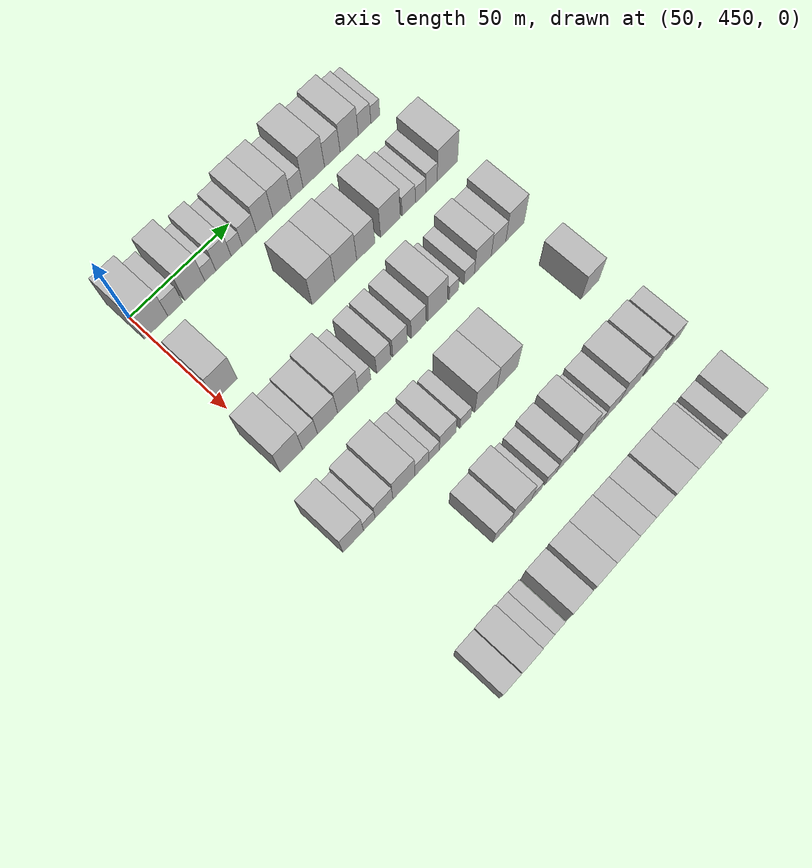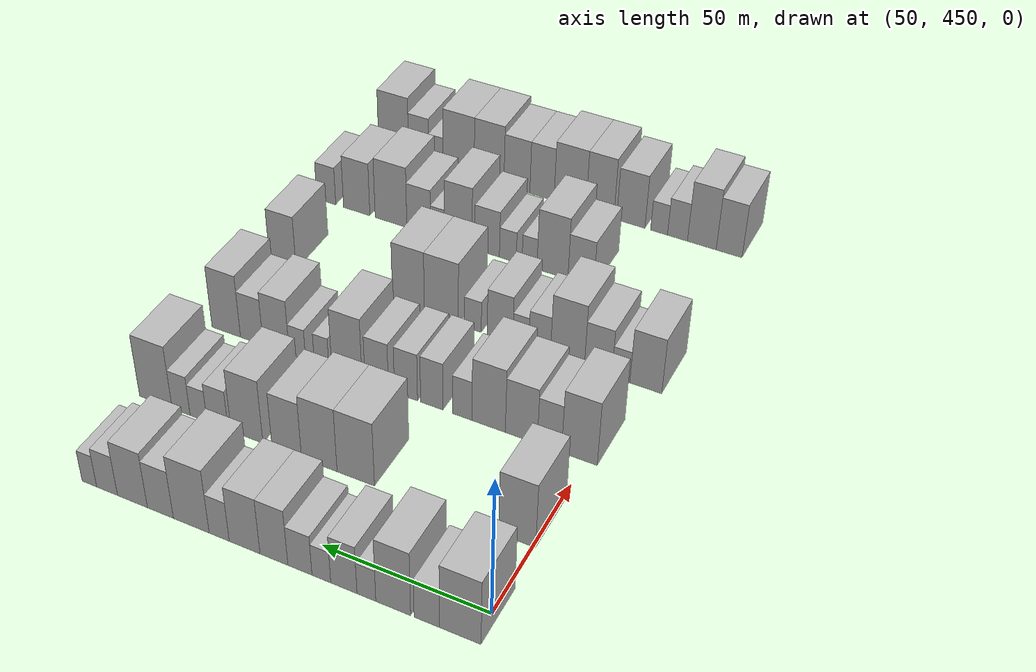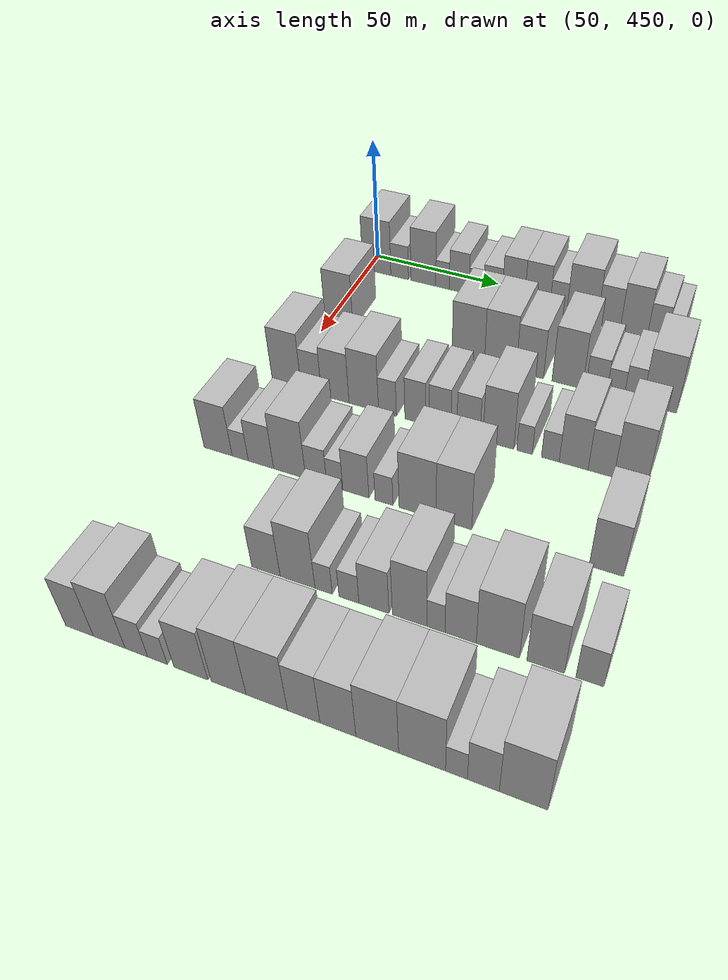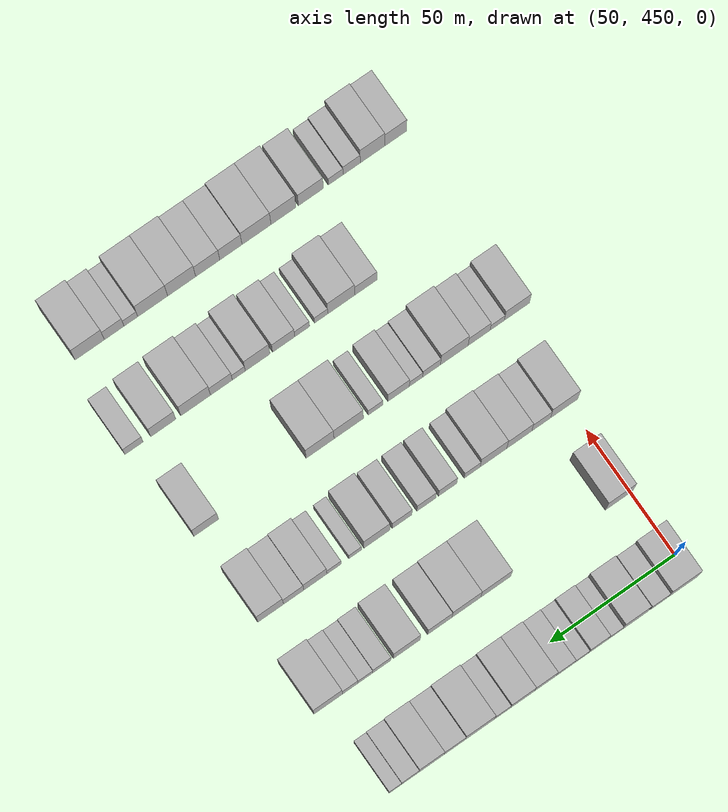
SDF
<sdf version="1.6">
 <world name="default">
  <model name="building_116">
   <static>1</static>
   <pose>50.0000 453.9854 0 0.000000 0.000000 0.000000</pose>
   <link name="link">
    <pose>0 0 12.00 0 0 0</pose>
    <collision name="collision"><geometry><box><size>20.0000 11.7475 24.0000</size></box></geometry></collision>
    <visual name="visual">
     <cast_shadows>0</cast_shadows>
     <geometry><box><size>20.0000 11.7475 24.0000</size></box></geometry>
     <material>
      <script>
       <uri>model://HANNAS_wall/materials/scripts</uri>
       <uri>model://HANNAS_wall/materials/textures</uri>
       <name>vrc/HANNAS_wall</name>
      </script>
     </material>
    </visual>
   </link>
  </model>
  <model name="building_117">
   <static>1</static>
   <pose>50.0000 463.5008 0 0.000000 0.000000 0.000000</pose>
   <link name="link">
    <pose>0 0 7.50 0 0 0</pose>
    <collision name="collision"><geometry><box><size>20.0000 7.2831 15.0000</size></box></geometry></collision>
    <visual name="visual">
     <cast_shadows>0</cast_shadows>
     <geometry><box><size>20.0000 7.2831 15.0000</size></box></geometry>
     <material>
      <script>
       <uri>model://HANNAS_wall/materials/scripts</uri>
       <uri>model://HANNAS_wall/materials/textures</uri>
       <name>vrc/HANNAS_wall</name>
      </script>
     </material>
    </visual>
   </link>
  </model>
  <model name="building_118">
   <static>1</static>
   <pose>50.0000 473.2054 0 0.000000 0.000000 0.000000</pose>
   <link name="link">
    <pose>0 0 12.00 0 0 0</pose>
    <collision name="collision"><geometry><box><size>20.0000 10.1261 24.0000</size></box></geometry></collision>
    <visual name="visual">
     <cast_shadows>0</cast_shadows>
     <geometry><box><size>20.0000 10.1261 24.0000</size></box></geometry>
     <material>
      <script>
       <uri>model://HANNAS_wall/materials/scripts</uri>
       <uri>model://HANNAS_wall/materials/textures</uri>
       <name>vrc/HANNAS_wall</name>
      </script>
     </material>
    </visual>
   </link>
  </model>
  <model name="building_119">
   <static>1</static>
   <pose>50.0000 481.0421 0 0.000000 0.000000 0.000000</pose>
   <link name="link">
    <pose>0 0 6.00 0 0 0</pose>
    <collision name="collision"><geometry><box><size>20.0000 5.5474 12.0000</size></box></geometry></collision>
    <visual name="visual">
     <cast_shadows>0</cast_shadows>
     <geometry><box><size>20.0000 5.5474 12.0000</size></box></geometry>
     <material>
      <script>
       <uri>model://HANNAS_wall/materials/scripts</uri>
       <uri>model://HANNAS_wall/materials/textures</uri>
       <name>vrc/HANNAS_wall</name>
      </script>
     </material>
    </visual>
   </link>
  </model>
  <model name="building_120">
   <static>1</static>
   <pose>50.0000 487.7304 0 0.000000 0.000000 0.000000</pose>
   <link name="link">
    <pose>0 0 9.00 0 0 0</pose>
    <collision name="collision"><geometry><box><size>20.0000 7.8290 18.0000</size></box></geometry></collision>
    <visual name="visual">
     <cast_shadows>0</cast_shadows>
     <geometry><box><size>20.0000 7.8290 18.0000</size></box></geometry>
     <material>
      <script>
       <uri>model://HANNAS_wall/materials/scripts</uri>
       <uri>model://HANNAS_wall/materials/textures</uri>
       <name>vrc/HANNAS_wall</name>
      </script>
     </material>
    </visual>
   </link>
  </model>
  <model name="building_121">
   <static>1</static>
   <pose>50.0000 494.4669 0 0.000000 0.000000 0.000000</pose>
   <link name="link">
    <pose>0 0 6.00 0 0 0</pose>
    <collision name="collision"><geometry><box><size>20.0000 5.6440 12.0000</size></box></geometry></collision>
    <visual name="visual">
     <cast_shadows>0</cast_shadows>
     <geometry><box><size>20.0000 5.6440 12.0000</size></box></geometry>
     <material>
      <script>
       <uri>model://HANNAS_wall/materials/scripts</uri>
       <uri>model://HANNAS_wall/materials/textures</uri>
       <name>vrc/HANNAS_wall</name>
      </script>
     </material>
    </visual>
   </link>
  </model>
  <model name="building_122">
   <static>1</static>
   <pose>50.0000 500.9648 0 0.000000 0.000000 0.000000</pose>
   <link name="link">
    <pose>0 0 7.50 0 0 0</pose>
    <collision name="collision"><geometry><box><size>20.0000 7.3519 15.0000</size></box></geometry></collision>
    <visual name="visual">
     <cast_shadows>0</cast_shadows>
     <geometry><box><size>20.0000 7.3519 15.0000</size></box></geometry>
     <material>
      <script>
       <uri>model://HANNAS_wall/materials/scripts</uri>
       <uri>model://HANNAS_wall/materials/textures</uri>
       <name>vrc/HANNAS_wall</name>
      </script>
     </material>
    </visual>
   </link>
  </model>
  <model name="building_123">
   <static>1</static>
   <pose>50.0000 508.9335 0 0.000000 0.000000 0.000000</pose>
   <link name="link">
    <pose>0 0 10.50 0 0 0</pose>
    <collision name="collision"><geometry><box><size>20.0000 8.5855 21.0000</size></box></geometry></collision>
    <visual name="visual">
     <cast_shadows>0</cast_shadows>
     <geometry><box><size>20.0000 8.5855 21.0000</size></box></geometry>
     <material>
      <script>
       <uri>model://HANNAS_wall/materials/scripts</uri>
       <uri>model://HANNAS_wall/materials/textures</uri>
       <name>vrc/HANNAS_wall</name>
      </script>
     </material>
    </visual>
   </link>
  </model>
  <model name="building_124">
   <static>1</static>
   <pose>50.0000 518.0370 0 0.000000 0.000000 0.000000</pose>
   <link name="link">
    <pose>0 0 10.50 0 0 0</pose>
    <collision name="collision"><geometry><box><size>20.0000 9.6216 21.0000</size></box></geometry></collision>
    <visual name="visual">
     <cast_shadows>0</cast_shadows>
     <geometry><box><size>20.0000 9.6216 21.0000</size></box></geometry>
     <material>
      <script>
       <uri>model://HANNAS_wall/materials/scripts</uri>
       <uri>model://HANNAS_wall/materials/textures</uri>
       <name>vrc/HANNAS_wall</name>
      </script>
     </material>
    </visual>
   </link>
  </model>
  <model name="building_125">
   <static>1</static>
   <pose>50.0000 526.0159 0 0.000000 0.000000 0.000000</pose>
   <link name="link">
    <pose>0 0 7.50 0 0 0</pose>
    <collision name="collision"><geometry><box><size>20.0000 6.3361 15.0000</size></box></geometry></collision>
    <visual name="visual">
     <cast_shadows>0</cast_shadows>
     <geometry><box><size>20.0000 6.3361 15.0000</size></box></geometry>
     <material>
      <script>
       <uri>model://HANNAS_wall/materials/scripts</uri>
       <uri>model://HANNAS_wall/materials/textures</uri>
       <name>vrc/HANNAS_wall</name>
      </script>
     </material>
    </visual>
   </link>
  </model>
  <model name="building_126">
   <static>1</static>
   <pose>50.0000 534.9378 0 0.000000 0.000000 0.000000</pose>
   <link name="link">
    <pose>0 0 12.00 0 0 0</pose>
    <collision name="collision"><geometry><box><size>20.0000 11.5076 24.0000</size></box></geometry></collision>
    <visual name="visual">
     <cast_shadows>0</cast_shadows>
     <geometry><box><size>20.0000 11.5076 24.0000</size></box></geometry>
     <material>
      <script>
       <uri>model://HANNAS_wall/materials/scripts</uri>
       <uri>model://HANNAS_wall/materials/textures</uri>
       <name>vrc/HANNAS_wall</name>
      </script>
     </material>
    </visual>
   </link>
  </model>
  <model name="building_127">
   <static>1</static>
   <pose>50.0000 544.9117 0 0.000000 0.000000 0.000000</pose>
   <link name="link">
    <pose>0 0 9.00 0 0 0</pose>
    <collision name="collision"><geometry><box><size>20.0000 8.4402 18.0000</size></box></geometry></collision>
    <visual name="visual">
     <cast_shadows>0</cast_shadows>
     <geometry><box><size>20.0000 8.4402 18.0000</size></box></geometry>
     <material>
      <script>
       <uri>model://HANNAS_wall/materials/scripts</uri>
       <uri>model://HANNAS_wall/materials/textures</uri>
       <name>vrc/HANNAS_wall</name>
      </script>
     </material>
    </visual>
   </link>
  </model>
  <model name="building_128">
   <static>1</static>
   <pose>50.0000 554.0801 0 0.000000 0.000000 0.000000</pose>
   <link name="link">
    <pose>0 0 10.50 0 0 0</pose>
    <collision name="collision"><geometry><box><size>20.0000 9.8966 21.0000</size></box></geometry></collision>
    <visual name="visual">
     <cast_shadows>0</cast_shadows>
     <geometry><box><size>20.0000 9.8966 21.0000</size></box></geometry>
     <material>
      <script>
       <uri>model://HANNAS_wall/materials/scripts</uri>
       <uri>model://HANNAS_wall/materials/textures</uri>
       <name>vrc/HANNAS_wall</name>
      </script>
     </material>
    </visual>
   </link>
  </model>
  <model name="building_129">
   <static>1</static>
   <pose>50.0000 562.5044 0 0.000000 0.000000 0.000000</pose>
   <link name="link">
    <pose>0 0 7.50 0 0 0</pose>
    <collision name="collision"><geometry><box><size>20.0000 6.9521 15.0000</size></box></geometry></collision>
    <visual name="visual">
     <cast_shadows>0</cast_shadows>
     <geometry><box><size>20.0000 6.9521 15.0000</size></box></geometry>
     <material>
      <script>
       <uri>model://HANNAS_wall/materials/scripts</uri>
       <uri>model://HANNAS_wall/materials/textures</uri>
       <name>vrc/HANNAS_wall</name>
      </script>
     </material>
    </visual>
   </link>
  </model>
  <model name="building_130">
   <static>1</static>
   <pose>50.0000 568.4292 0 0.000000 0.000000 0.000000</pose>
   <link name="link">
    <pose>0 0 6.00 0 0 0</pose>
    <collision name="collision"><geometry><box><size>20.0000 4.8976 12.0000</size></box></geometry></collision>
    <visual name="visual">
     <cast_shadows>0</cast_shadows>
     <geometry><box><size>20.0000 4.8976 12.0000</size></box></geometry>
     <material>
      <script>
       <uri>model://HANNAS_wall/materials/scripts</uri>
       <uri>model://HANNAS_wall/materials/textures</uri>
       <name>vrc/HANNAS_wall</name>
      </script>
     </material>
    </visual>
   </link>
  </model>
  <model name="building_239">
   <static>1</static>
   <pose>85.0000 454.6854 0 0.000000 0.000000 0.000000</pose>
   <link name="link">
    <pose>0 0 12.00 0 0 0</pose>
    <collision name="collision"><geometry><box><size>20.0000 10.9742 24.0000</size></box></geometry></collision>
    <visual name="visual">
     <cast_shadows>0</cast_shadows>
     <geometry><box><size>20.0000 10.9742 24.0000</size></box></geometry>
     <material>
      <script>
       <uri>model://HANNAS_wall/materials/scripts</uri>
       <uri>model://HANNAS_wall/materials/textures</uri>
       <name>vrc/HANNAS_wall</name>
      </script>
     </material>
    </visual>
   </link>
  </model>
  <model name="building_240">
   <static>1</static>
   <pose>85.0000 503.9974 0 0.000000 0.000000 0.000000</pose>
   <link name="link">
    <pose>0 0 12.00 0 0 0</pose>
    <collision name="collision"><geometry><box><size>20.0000 11.8833 24.0000</size></box></geometry></collision>
    <visual name="visual">
     <cast_shadows>0</cast_shadows>
     <geometry><box><size>20.0000 11.8833 24.0000</size></box></geometry>
     <material>
      <script>
       <uri>model://HANNAS_wall/materials/scripts</uri>
       <uri>model://HANNAS_wall/materials/textures</uri>
       <name>vrc/HANNAS_wall</name>
      </script>
     </material>
    </visual>
   </link>
  </model>
  <model name="building_241">
   <static>1</static>
   <pose>85.0000 515.6759 0 0.000000 0.000000 0.000000</pose>
   <link name="link">
    <pose>0 0 12.00 0 0 0</pose>
    <collision name="collision"><geometry><box><size>20.0000 11.4737 24.0000</size></box></geometry></collision>
    <visual name="visual">
     <cast_shadows>0</cast_shadows>
     <geometry><box><size>20.0000 11.4737 24.0000</size></box></geometry>
     <material>
      <script>
       <uri>model://HANNAS_wall/materials/scripts</uri>
       <uri>model://HANNAS_wall/materials/textures</uri>
       <name>vrc/HANNAS_wall</name>
      </script>
     </material>
    </visual>
   </link>
  </model>
  <model name="building_242">
   <static>1</static>
   <pose>85.0000 526.2453 0 0.000000 0.000000 0.000000</pose>
   <link name="link">
    <pose>0 0 10.50 0 0 0</pose>
    <collision name="collision"><geometry><box><size>20.0000 9.6649 21.0000</size></box></geometry></collision>
    <visual name="visual">
     <cast_shadows>0</cast_shadows>
     <geometry><box><size>20.0000 9.6649 21.0000</size></box></geometry>
     <material>
      <script>
       <uri>model://HANNAS_wall/materials/scripts</uri>
       <uri>model://HANNAS_wall/materials/textures</uri>
       <name>vrc/HANNAS_wall</name>
      </script>
     </material>
    </visual>
   </link>
  </model>
  <model name="building_243">
   <static>1</static>
   <pose>85.0000 539.3878 0 0.000000 0.000000 0.000000</pose>
   <link name="link">
    <pose>0 0 12.00 0 0 0</pose>
    <collision name="collision"><geometry><box><size>20.0000 10.6202 24.0000</size></box></geometry></collision>
    <visual name="visual">
     <cast_shadows>0</cast_shadows>
     <geometry><box><size>20.0000 10.6202 24.0000</size></box></geometry>
     <material>
      <script>
       <uri>model://HANNAS_wall/materials/scripts</uri>
       <uri>model://HANNAS_wall/materials/textures</uri>
       <name>vrc/HANNAS_wall</name>
      </script>
     </material>
    </visual>
   </link>
  </model>
  <model name="building_244">
   <static>1</static>
   <pose>85.0000 549.2724 0 0.000000 0.000000 0.000000</pose>
   <link name="link">
    <pose>0 0 7.50 0 0 0</pose>
    <collision name="collision"><geometry><box><size>20.0000 7.1488 15.0000</size></box></geometry></collision>
    <visual name="visual">
     <cast_shadows>0</cast_shadows>
     <geometry><box><size>20.0000 7.1488 15.0000</size></box></geometry>
     <material>
      <script>
       <uri>model://HANNAS_wall/materials/scripts</uri>
       <uri>model://HANNAS_wall/materials/textures</uri>
       <name>vrc/HANNAS_wall</name>
      </script>
     </material>
    </visual>
   </link>
  </model>
  <model name="building_245">
   <static>1</static>
   <pose>85.0000 555.7522 0 0.000000 0.000000 0.000000</pose>
   <link name="link">
    <pose>0 0 6.00 0 0 0</pose>
    <collision name="collision"><geometry><box><size>20.0000 5.8108 12.0000</size></box></geometry></collision>
    <visual name="visual">
     <cast_shadows>0</cast_shadows>
     <geometry><box><size>20.0000 5.8108 12.0000</size></box></geometry>
     <material>
      <script>
       <uri>model://HANNAS_wall/materials/scripts</uri>
       <uri>model://HANNAS_wall/materials/textures</uri>
       <name>vrc/HANNAS_wall</name>
      </script>
     </material>
    </visual>
   </link>
  </model>
  <model name="building_246">
   <static>1</static>
   <pose>85.0000 561.7723 0 0.000000 0.000000 0.000000</pose>
   <link name="link">
    <pose>0 0 7.50 0 0 0</pose>
    <collision name="collision"><geometry><box><size>20.0000 6.2294 15.0000</size></box></geometry></collision>
    <visual name="visual">
     <cast_shadows>0</cast_shadows>
     <geometry><box><size>20.0000 6.2294 15.0000</size></box></geometry>
     <material>
      <script>
       <uri>model://HANNAS_wall/materials/scripts</uri>
       <uri>model://HANNAS_wall/materials/textures</uri>
       <name>vrc/HANNAS_wall</name>
      </script>
     </material>
    </visual>
   </link>
  </model>
  <model name="building_247">
   <static>1</static>
   <pose>85.0000 570.5486 0 0.000000 0.000000 0.000000</pose>
   <link name="link">
    <pose>0 0 12.00 0 0 0</pose>
    <collision name="collision"><geometry><box><size>20.0000 11.3231 24.0000</size></box></geometry></collision>
    <visual name="visual">
     <cast_shadows>0</cast_shadows>
     <geometry><box><size>20.0000 11.3231 24.0000</size></box></geometry>
     <material>
      <script>
       <uri>model://HANNAS_wall/materials/scripts</uri>
       <uri>model://HANNAS_wall/materials/textures</uri>
       <name>vrc/HANNAS_wall</name>
      </script>
     </material>
    </visual>
   </link>
  </model>
  <model name="building_348">
   <static>1</static>
   <pose>120.0000 451.9521 0 0.000000 0.000000 0.000000</pose>
   <link name="link">
    <pose>0 0 12.00 0 0 0</pose>
    <collision name="collision"><geometry><box><size>20.0000 10.9035 24.0000</size></box></geometry></collision>
    <visual name="visual">
     <cast_shadows>0</cast_shadows>
     <geometry><box><size>20.0000 10.9035 24.0000</size></box></geometry>
     <material>
      <script>
       <uri>model://HANNAS_wall/materials/scripts</uri>
       <uri>model://HANNAS_wall/materials/textures</uri>
       <name>vrc/HANNAS_wall</name>
      </script>
     </material>
    </visual>
   </link>
  </model>
  <model name="building_349">
   <static>1</static>
   <pose>120.0000 461.1477 0 0.000000 0.000000 0.000000</pose>
   <link name="link">
    <pose>0 0 9.00 0 0 0</pose>
    <collision name="collision"><geometry><box><size>20.0000 7.4877 18.0000</size></box></geometry></collision>
    <visual name="visual">
     <cast_shadows>0</cast_shadows>
     <geometry><box><size>20.0000 7.4877 18.0000</size></box></geometry>
     <material>
      <script>
       <uri>model://HANNAS_wall/materials/scripts</uri>
       <uri>model://HANNAS_wall/materials/textures</uri>
       <name>vrc/HANNAS_wall</name>
      </script>
     </material>
    </visual>
   </link>
  </model>
  <model name="building_350">
   <static>1</static>
   <pose>120.0000 469.9141 0 0.000000 0.000000 0.000000</pose>
   <link name="link">
    <pose>0 0 10.50 0 0 0</pose>
    <collision name="collision"><geometry><box><size>20.0000 10.0451 21.0000</size></box></geometry></collision>
    <visual name="visual">
     <cast_shadows>0</cast_shadows>
     <geometry><box><size>20.0000 10.0451 21.0000</size></box></geometry>
     <material>
      <script>
       <uri>model://HANNAS_wall/materials/scripts</uri>
       <uri>model://HANNAS_wall/materials/textures</uri>
       <name>vrc/HANNAS_wall</name>
      </script>
     </material>
    </visual>
   </link>
  </model>
  <model name="building_351">
   <static>1</static>
   <pose>120.0000 480.2510 0 0.000000 0.000000 0.000000</pose>
   <link name="link">
    <pose>0 0 12.00 0 0 0</pose>
    <collision name="collision"><geometry><box><size>20.0000 10.6288 24.0000</size></box></geometry></collision>
    <visual name="visual">
     <cast_shadows>0</cast_shadows>
     <geometry><box><size>20.0000 10.6288 24.0000</size></box></geometry>
     <material>
      <script>
       <uri>model://HANNAS_wall/materials/scripts</uri>
       <uri>model://HANNAS_wall/materials/textures</uri>
       <name>vrc/HANNAS_wall</name>
      </script>
     </material>
    </visual>
   </link>
  </model>
  <model name="building_352">
   <static>1</static>
   <pose>120.0000 488.7197 0 0.000000 0.000000 0.000000</pose>
   <link name="link">
    <pose>0 0 7.50 0 0 0</pose>
    <collision name="collision"><geometry><box><size>20.0000 6.3085 15.0000</size></box></geometry></collision>
    <visual name="visual">
     <cast_shadows>0</cast_shadows>
     <geometry><box><size>20.0000 6.3085 15.0000</size></box></geometry>
     <material>
      <script>
       <uri>model://HANNAS_wall/materials/scripts</uri>
       <uri>model://HANNAS_wall/materials/textures</uri>
       <name>vrc/HANNAS_wall</name>
      </script>
     </material>
    </visual>
   </link>
  </model>
  <model name="building_353">
   <static>1</static>
   <pose>120.0000 498.5288 0 0.000000 0.000000 0.000000</pose>
   <link name="link">
    <pose>0 0 9.00 0 0 0</pose>
    <collision name="collision"><geometry><box><size>20.0000 7.3097 18.0000</size></box></geometry></collision>
    <visual name="visual">
     <cast_shadows>0</cast_shadows>
     <geometry><box><size>20.0000 7.3097 18.0000</size></box></geometry>
     <material>
      <script>
       <uri>model://HANNAS_wall/materials/scripts</uri>
       <uri>model://HANNAS_wall/materials/textures</uri>
       <name>vrc/HANNAS_wall</name>
      </script>
     </material>
    </visual>
   </link>
  </model>
  <model name="building_354">
   <static>1</static>
   <pose>120.0000 506.9851 0 0.000000 0.000000 0.000000</pose>
   <link name="link">
    <pose>0 0 9.00 0 0 0</pose>
    <collision name="collision"><geometry><box><size>20.0000 7.6027 18.0000</size></box></geometry></collision>
    <visual name="visual">
     <cast_shadows>0</cast_shadows>
     <geometry><box><size>20.0000 7.6027 18.0000</size></box></geometry>
     <material>
      <script>
       <uri>model://HANNAS_wall/materials/scripts</uri>
       <uri>model://HANNAS_wall/materials/textures</uri>
       <name>vrc/HANNAS_wall</name>
      </script>
     </material>
    </visual>
   </link>
  </model>
  <model name="building_355">
   <static>1</static>
   <pose>120.0000 516.7044 0 0.000000 0.000000 0.000000</pose>
   <link name="link">
    <pose>0 0 9.00 0 0 0</pose>
    <collision name="collision"><geometry><box><size>20.0000 7.8359 18.0000</size></box></geometry></collision>
    <visual name="visual">
     <cast_shadows>0</cast_shadows>
     <geometry><box><size>20.0000 7.8359 18.0000</size></box></geometry>
     <material>
      <script>
       <uri>model://HANNAS_wall/materials/scripts</uri>
       <uri>model://HANNAS_wall/materials/textures</uri>
       <name>vrc/HANNAS_wall</name>
      </script>
     </material>
    </visual>
   </link>
  </model>
  <model name="building_356">
   <static>1</static>
   <pose>120.0000 526.7466 0 0.000000 0.000000 0.000000</pose>
   <link name="link">
    <pose>0 0 12.00 0 0 0</pose>
    <collision name="collision"><geometry><box><size>20.0000 10.2485 24.0000</size></box></geometry></collision>
    <visual name="visual">
     <cast_shadows>0</cast_shadows>
     <geometry><box><size>20.0000 10.2485 24.0000</size></box></geometry>
     <material>
      <script>
       <uri>model://HANNAS_wall/materials/scripts</uri>
       <uri>model://HANNAS_wall/materials/textures</uri>
       <name>vrc/HANNAS_wall</name>
      </script>
     </material>
    </visual>
   </link>
  </model>
  <model name="building_357">
   <static>1</static>
   <pose>120.0000 535.3848 0 0.000000 0.000000 0.000000</pose>
   <link name="link">
    <pose>0 0 6.00 0 0 0</pose>
    <collision name="collision"><geometry><box><size>20.0000 5.0279 12.0000</size></box></geometry></collision>
    <visual name="visual">
     <cast_shadows>0</cast_shadows>
     <geometry><box><size>20.0000 5.0279 12.0000</size></box></geometry>
     <material>
      <script>
       <uri>model://HANNAS_wall/materials/scripts</uri>
       <uri>model://HANNAS_wall/materials/textures</uri>
       <name>vrc/HANNAS_wall</name>
      </script>
     </material>
    </visual>
   </link>
  </model>
  <model name="building_358">
   <static>1</static>
   <pose>120.0000 543.7488 0 0.000000 0.000000 0.000000</pose>
   <link name="link">
    <pose>0 0 6.00 0 0 0</pose>
    <collision name="collision"><geometry><box><size>20.0000 5.7002 12.0000</size></box></geometry></collision>
    <visual name="visual">
     <cast_shadows>0</cast_shadows>
     <geometry><box><size>20.0000 5.7002 12.0000</size></box></geometry>
     <material>
      <script>
       <uri>model://HANNAS_wall/materials/scripts</uri>
       <uri>model://HANNAS_wall/materials/textures</uri>
       <name>vrc/HANNAS_wall</name>
      </script>
     </material>
    </visual>
   </link>
  </model>
  <model name="building_359">
   <static>1</static>
   <pose>120.0000 551.1893 0 0.000000 0.000000 0.000000</pose>
   <link name="link">
    <pose>0 0 10.50 0 0 0</pose>
    <collision name="collision"><geometry><box><size>20.0000 9.1807 21.0000</size></box></geometry></collision>
    <visual name="visual">
     <cast_shadows>0</cast_shadows>
     <geometry><box><size>20.0000 9.1807 21.0000</size></box></geometry>
     <material>
      <script>
       <uri>model://HANNAS_wall/materials/scripts</uri>
       <uri>model://HANNAS_wall/materials/textures</uri>
       <name>vrc/HANNAS_wall</name>
      </script>
     </material>
    </visual>
   </link>
  </model>
  <model name="building_360">
   <static>1</static>
   <pose>120.0000 559.8015 0 0.000000 0.000000 0.000000</pose>
   <link name="link">
    <pose>0 0 9.00 0 0 0</pose>
    <collision name="collision"><geometry><box><size>20.0000 8.0438 18.0000</size></box></geometry></collision>
    <visual name="visual">
     <cast_shadows>0</cast_shadows>
     <geometry><box><size>20.0000 8.0438 18.0000</size></box></geometry>
     <material>
      <script>
       <uri>model://HANNAS_wall/materials/scripts</uri>
       <uri>model://HANNAS_wall/materials/textures</uri>
       <name>vrc/HANNAS_wall</name>
      </script>
     </material>
    </visual>
   </link>
  </model>
  <model name="building_361">
   <static>1</static>
   <pose>120.0000 568.9303 0 0.000000 0.000000 0.000000</pose>
   <link name="link">
    <pose>0 0 12.00 0 0 0</pose>
    <collision name="collision"><geometry><box><size>20.0000 10.2139 24.0000</size></box></geometry></collision>
    <visual name="visual">
     <cast_shadows>0</cast_shadows>
     <geometry><box><size>20.0000 10.2139 24.0000</size></box></geometry>
     <material>
      <script>
       <uri>model://HANNAS_wall/materials/scripts</uri>
       <uri>model://HANNAS_wall/materials/textures</uri>
       <name>vrc/HANNAS_wall</name>
      </script>
     </material>
    </visual>
   </link>
  </model>
  <model name="building_475">
   <static>1</static>
   <pose>155.0000 446.1366 0 0.000000 0.000000 0.000000</pose>
   <link name="link">
    <pose>0 0 10.50 0 0 0</pose>
    <collision name="collision"><geometry><box><size>20.0000 10.0637 21.0000</size></box></geometry></collision>
    <visual name="visual">
     <cast_shadows>0</cast_shadows>
     <geometry><box><size>20.0000 10.0637 21.0000</size></box></geometry>
     <material>
      <script>
       <uri>model://HANNAS_wall/materials/scripts</uri>
       <uri>model://HANNAS_wall/materials/textures</uri>
       <name>vrc/HANNAS_wall</name>
      </script>
     </material>
    </visual>
   </link>
  </model>
  <model name="building_476">
   <static>1</static>
   <pose>155.0000 454.0257 0 0.000000 0.000000 0.000000</pose>
   <link name="link">
    <pose>0 0 6.00 0 0 0</pose>
    <collision name="collision"><geometry><box><size>20.0000 5.7146 12.0000</size></box></geometry></collision>
    <visual name="visual">
     <cast_shadows>0</cast_shadows>
     <geometry><box><size>20.0000 5.7146 12.0000</size></box></geometry>
     <material>
      <script>
       <uri>model://HANNAS_wall/materials/scripts</uri>
       <uri>model://HANNAS_wall/materials/textures</uri>
       <name>vrc/HANNAS_wall</name>
      </script>
     </material>
    </visual>
   </link>
  </model>
  <model name="building_477">
   <static>1</static>
   <pose>155.0000 461.2973 0 0.000000 0.000000 0.000000</pose>
   <link name="link">
    <pose>0 0 9.00 0 0 0</pose>
    <collision name="collision"><geometry><box><size>20.0000 8.8285 18.0000</size></box></geometry></collision>
    <visual name="visual">
     <cast_shadows>0</cast_shadows>
     <geometry><box><size>20.0000 8.8285 18.0000</size></box></geometry>
     <material>
      <script>
       <uri>model://HANNAS_wall/materials/scripts</uri>
       <uri>model://HANNAS_wall/materials/textures</uri>
       <name>vrc/HANNAS_wall</name>
      </script>
     </material>
    </visual>
   </link>
  </model>
  <model name="building_478">
   <static>1</static>
   <pose>155.0000 471.2363 0 0.000000 0.000000 0.000000</pose>
   <link name="link">
    <pose>0 0 12.00 0 0 0</pose>
    <collision name="collision"><geometry><box><size>20.0000 11.0495 24.0000</size></box></geometry></collision>
    <visual name="visual">
     <cast_shadows>0</cast_shadows>
     <geometry><box><size>20.0000 11.0495 24.0000</size></box></geometry>
     <material>
      <script>
       <uri>model://HANNAS_wall/materials/scripts</uri>
       <uri>model://HANNAS_wall/materials/textures</uri>
       <name>vrc/HANNAS_wall</name>
      </script>
     </material>
    </visual>
   </link>
  </model>
  <model name="building_479">
   <static>1</static>
   <pose>155.0000 480.3290 0 0.000000 0.000000 0.000000</pose>
   <link name="link">
    <pose>0 0 7.50 0 0 0</pose>
    <collision name="collision"><geometry><box><size>20.0000 7.1358 15.0000</size></box></geometry></collision>
    <visual name="visual">
     <cast_shadows>0</cast_shadows>
     <geometry><box><size>20.0000 7.1358 15.0000</size></box></geometry>
     <material>
      <script>
       <uri>model://HANNAS_wall/materials/scripts</uri>
       <uri>model://HANNAS_wall/materials/textures</uri>
       <name>vrc/HANNAS_wall</name>
      </script>
     </material>
    </visual>
   </link>
  </model>
  <model name="building_480">
   <static>1</static>
   <pose>155.0000 486.5630 0 0.000000 0.000000 0.000000</pose>
   <link name="link">
    <pose>0 0 6.00 0 0 0</pose>
    <collision name="collision"><geometry><box><size>20.0000 5.3323 12.0000</size></box></geometry></collision>
    <visual name="visual">
     <cast_shadows>0</cast_shadows>
     <geometry><box><size>20.0000 5.3323 12.0000</size></box></geometry>
     <material>
      <script>
       <uri>model://HANNAS_wall/materials/scripts</uri>
       <uri>model://HANNAS_wall/materials/textures</uri>
       <name>vrc/HANNAS_wall</name>
      </script>
     </material>
    </visual>
   </link>
  </model>
  <model name="building_481">
   <static>1</static>
   <pose>155.0000 493.5262 0 0.000000 0.000000 0.000000</pose>
   <link name="link">
    <pose>0 0 9.00 0 0 0</pose>
    <collision name="collision"><geometry><box><size>20.0000 8.5941 18.0000</size></box></geometry></collision>
    <visual name="visual">
     <cast_shadows>0</cast_shadows>
     <geometry><box><size>20.0000 8.5941 18.0000</size></box></geometry>
     <material>
      <script>
       <uri>model://HANNAS_wall/materials/scripts</uri>
       <uri>model://HANNAS_wall/materials/textures</uri>
       <name>vrc/HANNAS_wall</name>
      </script>
     </material>
    </visual>
   </link>
  </model>
  <model name="building_482">
   <static>1</static>
   <pose>155.0000 502.7199 0 0.000000 0.000000 0.000000</pose>
   <link name="link">
    <pose>0 0 6.00 0 0 0</pose>
    <collision name="collision"><geometry><box><size>20.0000 5.7931 12.0000</size></box></geometry></collision>
    <visual name="visual">
     <cast_shadows>0</cast_shadows>
     <geometry><box><size>20.0000 5.7931 12.0000</size></box></geometry>
     <material>
      <script>
       <uri>model://HANNAS_wall/materials/scripts</uri>
       <uri>model://HANNAS_wall/materials/textures</uri>
       <name>vrc/HANNAS_wall</name>
      </script>
     </material>
    </visual>
   </link>
  </model>
  <model name="building_483">
   <static>1</static>
   <pose>155.0000 513.4795 0 0.000000 0.000000 0.000000</pose>
   <link name="link">
    <pose>0 0 12.00 0 0 0</pose>
    <collision name="collision"><geometry><box><size>20.0000 11.7262 24.0000</size></box></geometry></collision>
    <visual name="visual">
     <cast_shadows>0</cast_shadows>
     <geometry><box><size>20.0000 11.7262 24.0000</size></box></geometry>
     <material>
      <script>
       <uri>model://HANNAS_wall/materials/scripts</uri>
       <uri>model://HANNAS_wall/materials/textures</uri>
       <name>vrc/HANNAS_wall</name>
      </script>
     </material>
    </visual>
   </link>
  </model>
  <model name="building_484">
   <static>1</static>
   <pose>155.0000 524.8821 0 0.000000 0.000000 0.000000</pose>
   <link name="link">
    <pose>0 0 12.00 0 0 0</pose>
    <collision name="collision"><geometry><box><size>20.0000 11.0790 24.0000</size></box></geometry></collision>
    <visual name="visual">
     <cast_shadows>0</cast_shadows>
     <geometry><box><size>20.0000 11.0790 24.0000</size></box></geometry>
     <material>
      <script>
       <uri>model://HANNAS_wall/materials/scripts</uri>
       <uri>model://HANNAS_wall/materials/textures</uri>
       <name>vrc/HANNAS_wall</name>
      </script>
     </material>
    </visual>
   </link>
  </model>
  <model name="building_485">
   <static>1</static>
   <pose>155.0000 570.1797 0 0.000000 0.000000 0.000000</pose>
   <link name="link">
    <pose>0 0 10.50 0 0 0</pose>
    <collision name="collision"><geometry><box><size>20.0000 9.8387 21.0000</size></box></geometry></collision>
    <visual name="visual">
     <cast_shadows>0</cast_shadows>
     <geometry><box><size>20.0000 9.8387 21.0000</size></box></geometry>
     <material>
      <script>
       <uri>model://HANNAS_wall/materials/scripts</uri>
       <uri>model://HANNAS_wall/materials/textures</uri>
       <name>vrc/HANNAS_wall</name>
      </script>
     </material>
    </visual>
   </link>
  </model>
  <model name="building_596">
   <static>1</static>
   <pose>190.0000 482.1740 0 0.000000 0.000000 0.000000</pose>
   <link name="link">
    <pose>0 0 9.00 0 0 0</pose>
    <collision name="collision"><geometry><box><size>20.0000 8.9236 18.0000</size></box></geometry></collision>
    <visual name="visual">
     <cast_shadows>0</cast_shadows>
     <geometry><box><size>20.0000 8.9236 18.0000</size></box></geometry>
     <material>
      <script>
       <uri>model://HANNAS_wall/materials/scripts</uri>
       <uri>model://HANNAS_wall/materials/textures</uri>
       <name>vrc/HANNAS_wall</name>
      </script>
     </material>
    </visual>
   </link>
  </model>
  <model name="building_597">
   <static>1</static>
   <pose>190.0000 492.0037 0 0.000000 0.000000 0.000000</pose>
   <link name="link">
    <pose>0 0 12.00 0 0 0</pose>
    <collision name="collision"><geometry><box><size>20.0000 10.7359 24.0000</size></box></geometry></collision>
    <visual name="visual">
     <cast_shadows>0</cast_shadows>
     <geometry><box><size>20.0000 10.7359 24.0000</size></box></geometry>
     <material>
      <script>
       <uri>model://HANNAS_wall/materials/scripts</uri>
       <uri>model://HANNAS_wall/materials/textures</uri>
       <name>vrc/HANNAS_wall</name>
      </script>
     </material>
    </visual>
   </link>
  </model>
  <model name="building_598">
   <static>1</static>
   <pose>190.0000 499.9982 0 0.000000 0.000000 0.000000</pose>
   <link name="link">
    <pose>0 0 6.00 0 0 0</pose>
    <collision name="collision"><geometry><box><size>20.0000 5.2530 12.0000</size></box></geometry></collision>
    <visual name="visual">
     <cast_shadows>0</cast_shadows>
     <geometry><box><size>20.0000 5.2530 12.0000</size></box></geometry>
     <material>
      <script>
       <uri>model://HANNAS_wall/materials/scripts</uri>
       <uri>model://HANNAS_wall/materials/textures</uri>
       <name>vrc/HANNAS_wall</name>
      </script>
     </material>
    </visual>
   </link>
  </model>
  <model name="building_599">
   <static>1</static>
   <pose>190.0000 507.6069 0 0.000000 0.000000 0.000000</pose>
   <link name="link">
    <pose>0 0 6.00 0 0 0</pose>
    <collision name="collision"><geometry><box><size>20.0000 5.9644 12.0000</size></box></geometry></collision>
    <visual name="visual">
     <cast_shadows>0</cast_shadows>
     <geometry><box><size>20.0000 5.9644 12.0000</size></box></geometry>
     <material>
      <script>
       <uri>model://HANNAS_wall/materials/scripts</uri>
       <uri>model://HANNAS_wall/materials/textures</uri>
       <name>vrc/HANNAS_wall</name>
      </script>
     </material>
    </visual>
   </link>
  </model>
  <model name="building_600">
   <static>1</static>
   <pose>190.0000 515.0054 0 0.000000 0.000000 0.000000</pose>
   <link name="link">
    <pose>0 0 9.00 0 0 0</pose>
    <collision name="collision"><geometry><box><size>20.0000 8.8325 18.0000</size></box></geometry></collision>
    <visual name="visual">
     <cast_shadows>0</cast_shadows>
     <geometry><box><size>20.0000 8.8325 18.0000</size></box></geometry>
     <material>
      <script>
       <uri>model://HANNAS_wall/materials/scripts</uri>
       <uri>model://HANNAS_wall/materials/textures</uri>
       <name>vrc/HANNAS_wall</name>
      </script>
     </material>
    </visual>
   </link>
  </model>
  <model name="building_601">
   <static>1</static>
   <pose>190.0000 525.3630 0 0.000000 0.000000 0.000000</pose>
   <link name="link">
    <pose>0 0 12.00 0 0 0</pose>
    <collision name="collision"><geometry><box><size>20.0000 9.8827 24.0000</size></box></geometry></collision>
    <visual name="visual">
     <cast_shadows>0</cast_shadows>
     <geometry><box><size>20.0000 9.8827 24.0000</size></box></geometry>
     <material>
      <script>
       <uri>model://HANNAS_wall/materials/scripts</uri>
       <uri>model://HANNAS_wall/materials/textures</uri>
       <name>vrc/HANNAS_wall</name>
      </script>
     </material>
    </visual>
   </link>
  </model>
  <model name="building_602">
   <static>1</static>
   <pose>190.0000 532.8982 0 0.000000 0.000000 0.000000</pose>
   <link name="link">
    <pose>0 0 6.00 0 0 0</pose>
    <collision name="collision"><geometry><box><size>20.0000 5.1877 12.0000</size></box></geometry></collision>
    <visual name="visual">
     <cast_shadows>0</cast_shadows>
     <geometry><box><size>20.0000 5.1877 12.0000</size></box></geometry>
     <material>
      <script>
       <uri>model://HANNAS_wall/materials/scripts</uri>
       <uri>model://HANNAS_wall/materials/textures</uri>
       <name>vrc/HANNAS_wall</name>
      </script>
     </material>
    </visual>
   </link>
  </model>
  <model name="building_603">
   <static>1</static>
   <pose>190.0000 539.8473 0 0.000000 0.000000 0.000000</pose>
   <link name="link">
    <pose>0 0 9.00 0 0 0</pose>
    <collision name="collision"><geometry><box><size>20.0000 8.7106 18.0000</size></box></geometry></collision>
    <visual name="visual">
     <cast_shadows>0</cast_shadows>
     <geometry><box><size>20.0000 8.7106 18.0000</size></box></geometry>
     <material>
      <script>
       <uri>model://HANNAS_wall/materials/scripts</uri>
       <uri>model://HANNAS_wall/materials/textures</uri>
       <name>vrc/HANNAS_wall</name>
      </script>
     </material>
    </visual>
   </link>
  </model>
  <model name="building_604">
   <static>1</static>
   <pose>190.0000 550.1074 0 0.000000 0.000000 0.000000</pose>
   <link name="link">
    <pose>0 0 12.00 0 0 0</pose>
    <collision name="collision"><geometry><box><size>20.0000 11.8095 24.0000</size></box></geometry></collision>
    <visual name="visual">
     <cast_shadows>0</cast_shadows>
     <geometry><box><size>20.0000 11.8095 24.0000</size></box></geometry>
     <material>
      <script>
       <uri>model://HANNAS_wall/materials/scripts</uri>
       <uri>model://HANNAS_wall/materials/textures</uri>
       <name>vrc/HANNAS_wall</name>
      </script>
     </material>
    </visual>
   </link>
  </model>
  <model name="building_605">
   <static>1</static>
   <pose>190.0000 563.0018 0 0.000000 0.000000 0.000000</pose>
   <link name="link">
    <pose>0 0 10.50 0 0 0</pose>
    <collision name="collision"><geometry><box><size>20.0000 9.9794 21.0000</size></box></geometry></collision>
    <visual name="visual">
     <cast_shadows>0</cast_shadows>
     <geometry><box><size>20.0000 9.9794 21.0000</size></box></geometry>
     <material>
      <script>
       <uri>model://HANNAS_wall/materials/scripts</uri>
       <uri>model://HANNAS_wall/materials/textures</uri>
       <name>vrc/HANNAS_wall</name>
      </script>
     </material>
    </visual>
   </link>
  </model>
  <model name="building_606">
   <static>1</static>
   <pose>190.0000 574.6219 0 0.000000 0.000000 0.000000</pose>
   <link name="link">
    <pose>0 0 7.50 0 0 0</pose>
    <collision name="collision"><geometry><box><size>20.0000 7.2608 15.0000</size></box></geometry></collision>
    <visual name="visual">
     <cast_shadows>0</cast_shadows>
     <geometry><box><size>20.0000 7.2608 15.0000</size></box></geometry>
     <material>
      <script>
       <uri>model://HANNAS_wall/materials/scripts</uri>
       <uri>model://HANNAS_wall/materials/textures</uri>
       <name>vrc/HANNAS_wall</name>
      </script>
     </material>
    </visual>
   </link>
  </model>
  <model name="building_726">
   <static>1</static>
   <pose>225.0000 445.6678 0 0.000000 0.000000 0.000000</pose>
   <link name="link">
    <pose>0 0 10.50 0 0 0</pose>
    <collision name="collision"><geometry><box><size>20.0000 8.7736 21.0000</size></box></geometry></collision>
    <visual name="visual">
     <cast_shadows>0</cast_shadows>
     <geometry><box><size>20.0000 8.7736 21.0000</size></box></geometry>
     <material>
      <script>
       <uri>model://HANNAS_wall/materials/scripts</uri>
       <uri>model://HANNAS_wall/materials/textures</uri>
       <name>vrc/HANNAS_wall</name>
      </script>
     </material>
    </visual>
   </link>
  </model>
  <model name="building_727">
   <static>1</static>
   <pose>225.0000 454.9718 0 0.000000 0.000000 0.000000</pose>
   <link name="link">
    <pose>0 0 12.00 0 0 0</pose>
    <collision name="collision"><geometry><box><size>20.0000 9.8344 24.0000</size></box></geometry></collision>
    <visual name="visual">
     <cast_shadows>0</cast_shadows>
     <geometry><box><size>20.0000 9.8344 24.0000</size></box></geometry>
     <material>
      <script>
       <uri>model://HANNAS_wall/materials/scripts</uri>
       <uri>model://HANNAS_wall/materials/textures</uri>
       <name>vrc/HANNAS_wall</name>
      </script>
     </material>
    </visual>
   </link>
  </model>
  <model name="building_728">
   <static>1</static>
   <pose>225.0000 463.3407 0 0.000000 0.000000 0.000000</pose>
   <link name="link">
    <pose>0 0 7.50 0 0 0</pose>
    <collision name="collision"><geometry><box><size>20.0000 6.9034 15.0000</size></box></geometry></collision>
    <visual name="visual">
     <cast_shadows>0</cast_shadows>
     <geometry><box><size>20.0000 6.9034 15.0000</size></box></geometry>
     <material>
      <script>
       <uri>model://HANNAS_wall/materials/scripts</uri>
       <uri>model://HANNAS_wall/materials/textures</uri>
       <name>vrc/HANNAS_wall</name>
      </script>
     </material>
    </visual>
   </link>
  </model>
  <model name="building_729">
   <static>1</static>
   <pose>225.0000 469.7350 0 0.000000 0.000000 0.000000</pose>
   <link name="link">
    <pose>0 0 6.00 0 0 0</pose>
    <collision name="collision"><geometry><box><size>20.0000 5.8852 12.0000</size></box></geometry></collision>
    <visual name="visual">
     <cast_shadows>0</cast_shadows>
     <geometry><box><size>20.0000 5.8852 12.0000</size></box></geometry>
     <material>
      <script>
       <uri>model://HANNAS_wall/materials/scripts</uri>
       <uri>model://HANNAS_wall/materials/textures</uri>
       <name>vrc/HANNAS_wall</name>
      </script>
     </material>
    </visual>
   </link>
  </model>
  <model name="building_730">
   <static>1</static>
   <pose>225.0000 479.6808 0 0.000000 0.000000 0.000000</pose>
   <link name="link">
    <pose>0 0 10.50 0 0 0</pose>
    <collision name="collision"><geometry><box><size>20.0000 10.0064 21.0000</size></box></geometry></collision>
    <visual name="visual">
     <cast_shadows>0</cast_shadows>
     <geometry><box><size>20.0000 10.0064 21.0000</size></box></geometry>
     <material>
      <script>
       <uri>model://HANNAS_wall/materials/scripts</uri>
       <uri>model://HANNAS_wall/materials/textures</uri>
       <name>vrc/HANNAS_wall</name>
      </script>
     </material>
    </visual>
   </link>
  </model>
  <model name="building_731">
   <static>1</static>
   <pose>225.0000 490.6869 0 0.000000 0.000000 0.000000</pose>
   <link name="link">
    <pose>0 0 12.00 0 0 0</pose>
    <collision name="collision"><geometry><box><size>20.0000 10.0060 24.0000</size></box></geometry></collision>
    <visual name="visual">
     <cast_shadows>0</cast_shadows>
     <geometry><box><size>20.0000 10.0060 24.0000</size></box></geometry>
     <material>
      <script>
       <uri>model://HANNAS_wall/materials/scripts</uri>
       <uri>model://HANNAS_wall/materials/textures</uri>
       <name>vrc/HANNAS_wall</name>
      </script>
     </material>
    </visual>
   </link>
  </model>
  <model name="building_732">
   <static>1</static>
   <pose>225.0000 501.4846 0 0.000000 0.000000 0.000000</pose>
   <link name="link">
    <pose>0 0 12.00 0 0 0</pose>
    <collision name="collision"><geometry><box><size>20.0000 11.5894 24.0000</size></box></geometry></collision>
    <visual name="visual">
     <cast_shadows>0</cast_shadows>
     <geometry><box><size>20.0000 11.5894 24.0000</size></box></geometry>
     <material>
      <script>
       <uri>model://HANNAS_wall/materials/scripts</uri>
       <uri>model://HANNAS_wall/materials/textures</uri>
       <name>vrc/HANNAS_wall</name>
      </script>
     </material>
    </visual>
   </link>
  </model>
  <model name="building_733">
   <static>1</static>
   <pose>225.0000 511.7301 0 0.000000 0.000000 0.000000</pose>
   <link name="link">
    <pose>0 0 10.50 0 0 0</pose>
    <collision name="collision"><geometry><box><size>20.0000 8.9016 21.0000</size></box></geometry></collision>
    <visual name="visual">
     <cast_shadows>0</cast_shadows>
     <geometry><box><size>20.0000 8.9016 21.0000</size></box></geometry>
     <material>
      <script>
       <uri>model://HANNAS_wall/materials/scripts</uri>
       <uri>model://HANNAS_wall/materials/textures</uri>
       <name>vrc/HANNAS_wall</name>
      </script>
     </material>
    </visual>
   </link>
  </model>
  <model name="building_734">
   <static>1</static>
   <pose>225.0000 520.9986 0 0.000000 0.000000 0.000000</pose>
   <link name="link">
    <pose>0 0 10.50 0 0 0</pose>
    <collision name="collision"><geometry><box><size>20.0000 9.6354 21.0000</size></box></geometry></collision>
    <visual name="visual">
     <cast_shadows>0</cast_shadows>
     <geometry><box><size>20.0000 9.6354 21.0000</size></box></geometry>
     <material>
      <script>
       <uri>model://HANNAS_wall/materials/scripts</uri>
       <uri>model://HANNAS_wall/materials/textures</uri>
       <name>vrc/HANNAS_wall</name>
      </script>
     </material>
    </visual>
   </link>
  </model>
  <model name="building_735">
   <static>1</static>
   <pose>225.0000 531.4180 0 0.000000 0.000000 0.000000</pose>
   <link name="link">
    <pose>0 0 12.00 0 0 0</pose>
    <collision name="collision"><geometry><box><size>20.0000 11.2034 24.0000</size></box></geometry></collision>
    <visual name="visual">
     <cast_shadows>0</cast_shadows>
     <geometry><box><size>20.0000 11.2034 24.0000</size></box></geometry>
     <material>
      <script>
       <uri>model://HANNAS_wall/materials/scripts</uri>
       <uri>model://HANNAS_wall/materials/textures</uri>
       <name>vrc/HANNAS_wall</name>
      </script>
     </material>
    </visual>
   </link>
  </model>
  <model name="building_736">
   <static>1</static>
   <pose>225.0000 542.9918 0 0.000000 0.000000 0.000000</pose>
   <link name="link">
    <pose>0 0 12.00 0 0 0</pose>
    <collision name="collision"><geometry><box><size>20.0000 11.9441 24.0000</size></box></geometry></collision>
    <visual name="visual">
     <cast_shadows>0</cast_shadows>
     <geometry><box><size>20.0000 11.9441 24.0000</size></box></geometry>
     <material>
      <script>
       <uri>model://HANNAS_wall/materials/scripts</uri>
       <uri>model://HANNAS_wall/materials/textures</uri>
       <name>vrc/HANNAS_wall</name>
      </script>
     </material>
    </visual>
   </link>
  </model>
  <model name="building_737">
   <static>1</static>
   <pose>225.0000 551.6912 0 0.000000 0.000000 0.000000</pose>
   <link name="link">
    <pose>0 0 6.00 0 0 0</pose>
    <collision name="collision"><geometry><box><size>20.0000 5.4548 12.0000</size></box></geometry></collision>
    <visual name="visual">
     <cast_shadows>0</cast_shadows>
     <geometry><box><size>20.0000 5.4548 12.0000</size></box></geometry>
     <material>
      <script>
       <uri>model://HANNAS_wall/materials/scripts</uri>
       <uri>model://HANNAS_wall/materials/textures</uri>
       <name>vrc/HANNAS_wall</name>
      </script>
     </material>
    </visual>
   </link>
  </model>
  <model name="building_738">
   <static>1</static>
   <pose>225.0000 558.3359 0 0.000000 0.000000 0.000000</pose>
   <link name="link">
    <pose>0 0 9.00 0 0 0</pose>
    <collision name="collision"><geometry><box><size>20.0000 7.8346 18.0000</size></box></geometry></collision>
    <visual name="visual">
     <cast_shadows>0</cast_shadows>
     <geometry><box><size>20.0000 7.8346 18.0000</size></box></geometry>
     <material>
      <script>
       <uri>model://HANNAS_wall/materials/scripts</uri>
       <uri>model://HANNAS_wall/materials/textures</uri>
       <name>vrc/HANNAS_wall</name>
      </script>
     </material>
    </visual>
   </link>
  </model>
  <model name="building_739">
   <static>1</static>
   <pose>225.0000 568.1040 0 0.000000 0.000000 0.000000</pose>
   <link name="link">
    <pose>0 0 12.00 0 0 0</pose>
    <collision name="collision"><geometry><box><size>20.0000 11.7015 24.0000</size></box></geometry></collision>
    <visual name="visual">
     <cast_shadows>0</cast_shadows>
     <geometry><box><size>20.0000 11.7015 24.0000</size></box></geometry>
     <material>
      <script>
       <uri>model://HANNAS_wall/materials/scripts</uri>
       <uri>model://HANNAS_wall/materials/textures</uri>
       <name>vrc/HANNAS_wall</name>
      </script>
     </material>
    </visual>
   </link>
  </model>
 </world>
</sdf>
